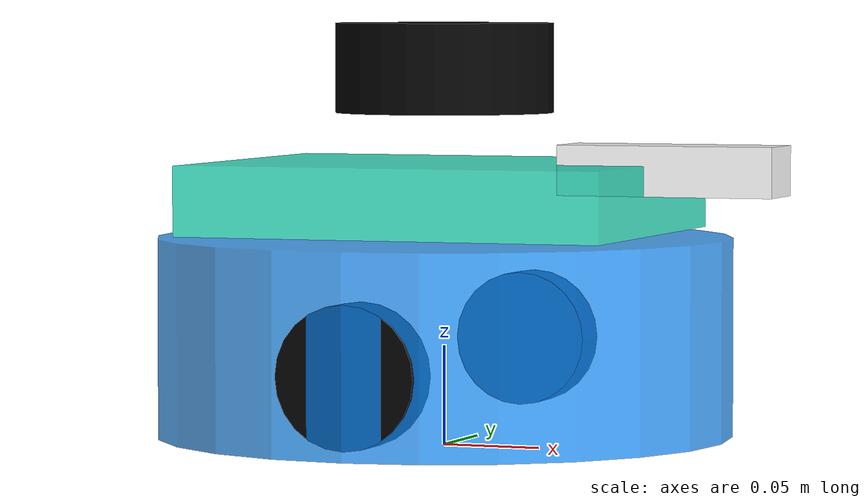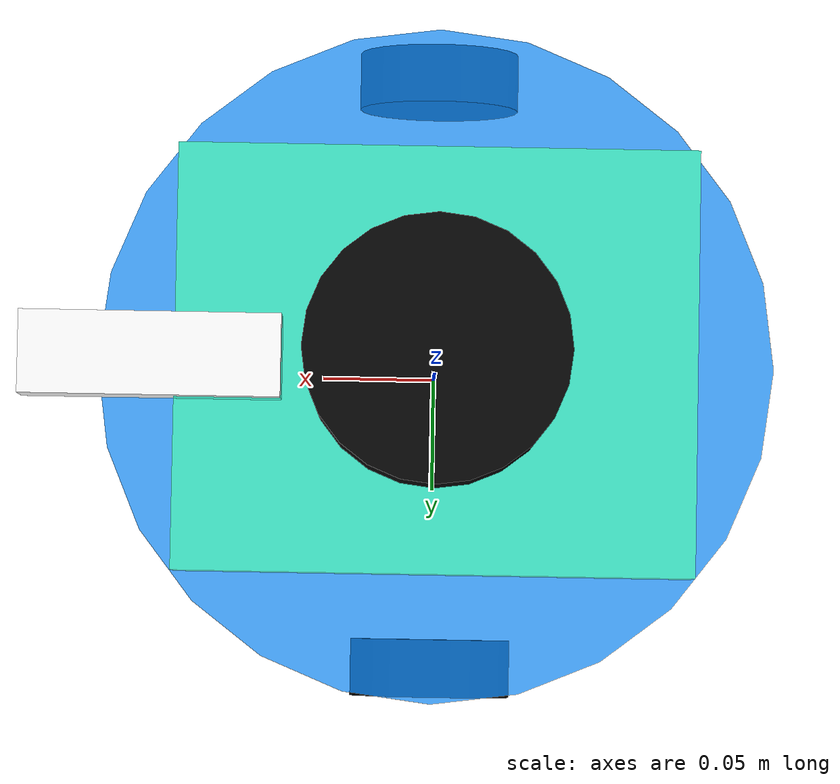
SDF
<?xml version="1.0" ?>
<sdf version="1.7">
  <model name="visual_twin_burger">
    <static>true</static>
    <link name="base_link">
      <visual name="base">
        <pose>0 0 0.055 0 0 0</pose>
        <geometry>
          <cylinder>
            <radius>0.145</radius>
            <length>0.10</length>
          </cylinder>
        </geometry>
        <material>
          <ambient>0.05 0.55 1.0 0.75</ambient>
          <diffuse>0.05 0.55 1.0 0.75</diffuse>
        </material>
      </visual>
      <visual name="top_plate">
        <pose>0 0 0.125 0 0 0</pose>
        <geometry>
          <box>
            <size>0.22 0.18 0.035</size>
          </box>
        </geometry>
        <material>
          <ambient>0.10 0.90 0.75 0.80</ambient>
          <diffuse>0.10 0.90 0.75 0.80</diffuse>
        </material>
      </visual>
      <visual name="lidar">
        <pose>0 0 0.19 0 0 0</pose>
        <geometry>
          <cylinder>
            <radius>0.055</radius>
            <length>0.045</length>
          </cylinder>
        </geometry>
        <material>
          <ambient>0.02 0.02 0.02 1.0</ambient>
          <diffuse>0.02 0.02 0.02 1.0</diffuse>
        </material>
      </visual>
      <visual name="left_wheel">
        <pose>0 0.13 0.045 1.5708 0 0</pose>
        <geometry>
          <cylinder>
            <radius>0.035</radius>
            <length>0.025</length>
          </cylinder>
        </geometry>
        <material>
          <ambient>0.01 0.01 0.01 1.0</ambient>
          <diffuse>0.01 0.01 0.01 1.0</diffuse>
        </material>
      </visual>
      <visual name="right_wheel">
        <pose>0 -0.13 0.045 1.5708 0 0</pose>
        <geometry>
          <cylinder>
            <radius>0.035</radius>
            <length>0.025</length>
          </cylinder>
        </geometry>
        <material>
          <ambient>0.01 0.01 0.01 1.0</ambient>
          <diffuse>0.01 0.01 0.01 1.0</diffuse>
        </material>
      </visual>
      <visual name="front_arrow">
        <pose>0.12 0 0.14 0 0 0</pose>
        <geometry>
          <box>
            <size>0.11 0.035 0.025</size>
          </box>
        </geometry>
        <material>
          <ambient>1.0 1.0 1.0 1.0</ambient>
          <diffuse>1.0 1.0 1.0 1.0</diffuse>
        </material>
      </visual>
    </link>
  </model>
</sdf>
